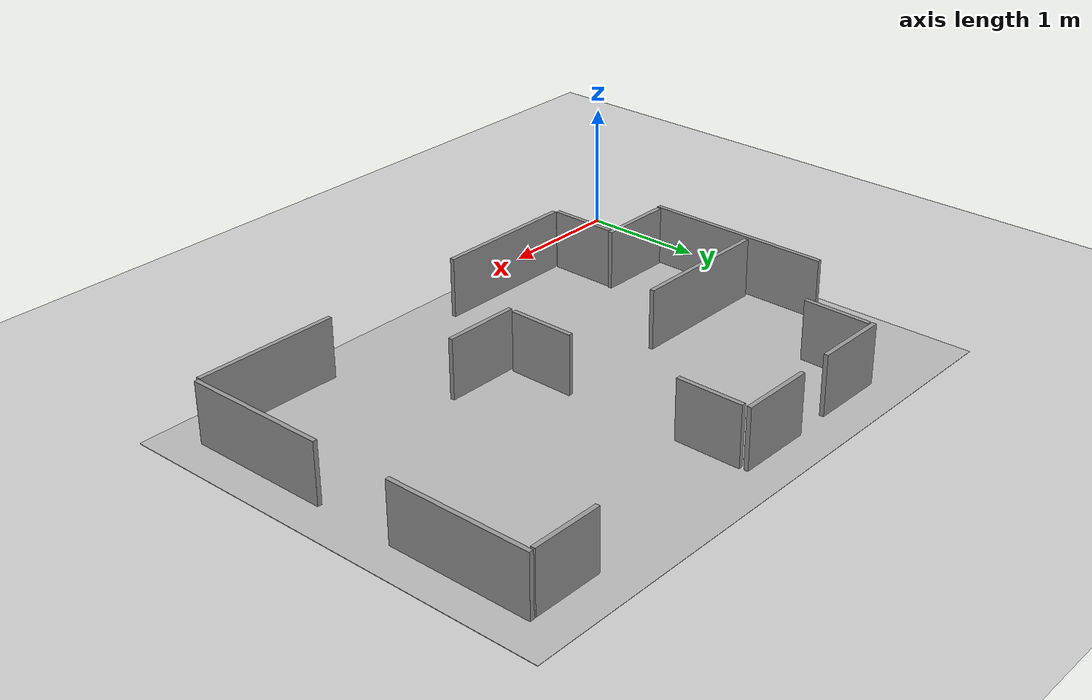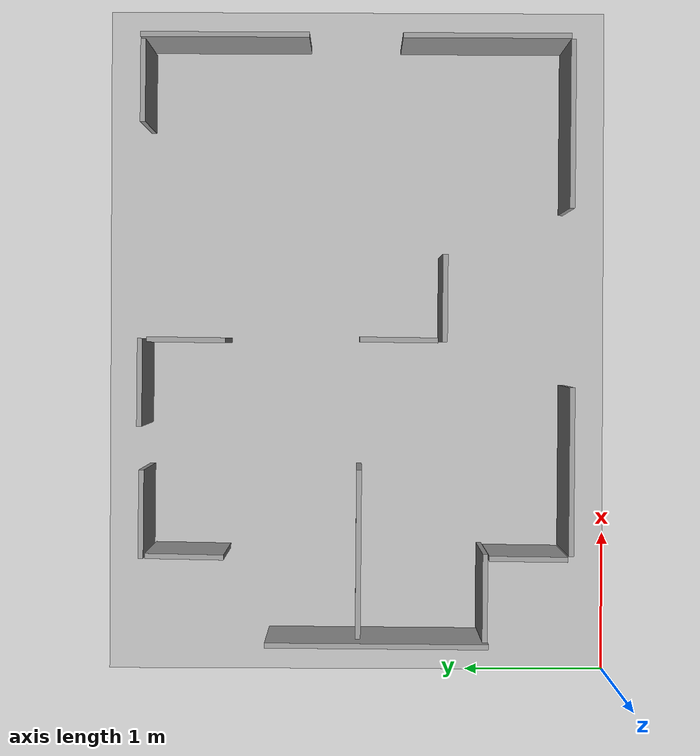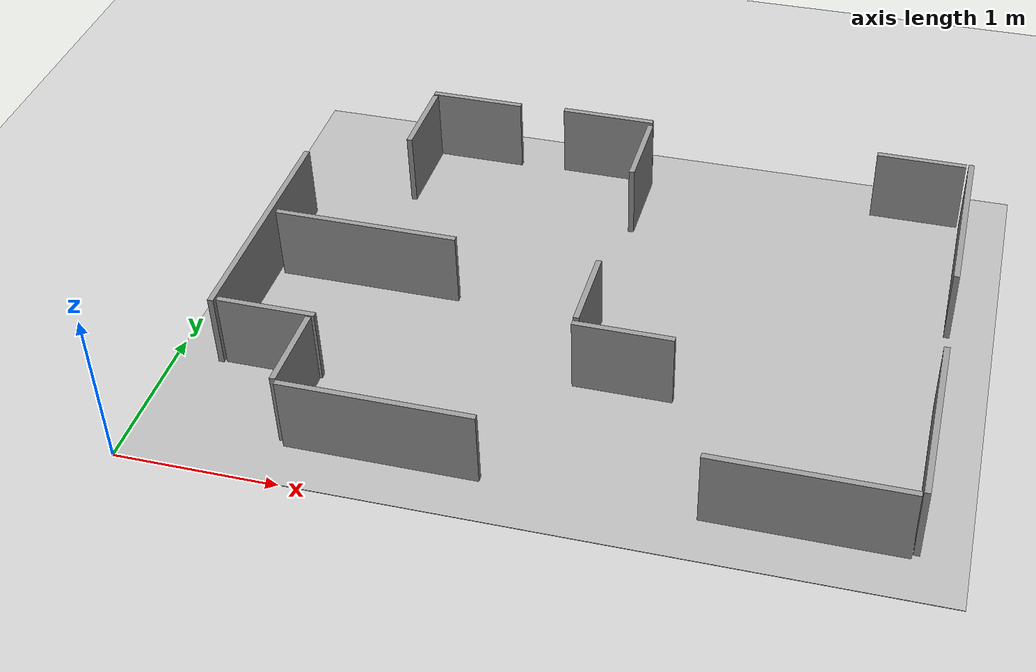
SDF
<sdf version="1.7">
 <world name="default">
  <scene><ambient>0.4 0.4 0.4 1</ambient><background>0.7 0.7 0.7 1</background><shadows>1</shadows></scene>
  <light name="sun" type="directional">
   <pose>0 0 10 0 -0 0</pose>
   <diffuse>0.8 0.8 0.8 1</diffuse>
   <specular>0.2 0.2 0.2 1</specular>
   <attenuation>
    <range>1000</range>
    <constant>0.9</constant>
    <linear>0.01</linear>
    <quadratic>0.001</quadratic>
   </attenuation>
   <direction>-0.5 0.1 -0.9</direction>
   <spot><inner_angle>0</inner_angle><outer_angle>0</outer_angle><falloff>0</falloff></spot>
  </light>
  <model name="ground_plane">
   <static>1</static>
   <link name="link">
    <collision name="collision">
     <geometry><plane><normal>0 0 1</normal><size>100 100</size></plane></geometry>
     <surface>
      <contact><collide_bitmask>65535</collide_bitmask></contact>
      <friction><ode><mu>100</mu><mu2>50</mu2></ode></friction>
     </surface>
    </collision>
    <visual name="visual">
     <cast_shadows>0</cast_shadows>
     <geometry><plane><normal>0 0 1</normal><size>100 100</size></plane></geometry>
     <material>
      <script><uri>file://media/materials/scripts/gazebo.material</uri><name>Gazebo/Grey</name></script>
     </material>
    </visual>
   </link>
  </model>
  <model name="courseabc">
   <static>1</static>
   <link name="course_link">
    <visual name="course_visual">
     <cast_shadows>0</cast_shadows>
     <geometry><plane><normal>0 0 1</normal><size>4.8 3.6</size></plane></geometry>
     <material>
      <script>
       <uri>model://courseabc/materials/scripts</uri>
       <uri>model://courseabc/materials/textures</uri>
       <name>courseabc</name>
      </script>
     </material>
    </visual>
   </link>
   <pose>2.4 1.8 0.001 0 -0 0</pose>
  </model>
  <physics type="ode">
   <real_time_update_rate>1000</real_time_update_rate>
   <max_step_size>0.001</max_step_size>
   <real_time_factor>1</real_time_factor>
   <ode>
    <solver>
     <type>quick</type>
     <iters>150</iters>
     <precon_iters>0</precon_iters>
     <sor>1.4</sor>
     <use_dynamic_moi_rescaling>1</use_dynamic_moi_rescaling>
    </solver>
    <constraints>
     <cfm>1e-05</cfm>
     <erp>0.2</erp>
     <contact_max_correcting_vel>2000</contact_max_correcting_vel>
     <contact_surface_layer>0.01</contact_surface_layer>
    </constraints>
   </ode>
  </physics>
  <gravity>0 0 -9.8</gravity>
  <magnetic_field>6e-06 2.3e-05 -4.2e-05</magnetic_field>
  <atmosphere type="adiabatic"/>
  <spherical_coordinates>
   <surface_model>EARTH_WGS84</surface_model>
   <latitude_deg>0</latitude_deg>
   <longitude_deg>0</longitude_deg>
   <elevation>0</elevation>
   <heading_deg>0</heading_deg>
  </spherical_coordinates>
  <model name="unit_box">
   <pose>0.287102 1.65666 0.243991 1.4e-05 -0 -0.004626</pose>
   <static>true</static>
   <link name="link">
    <inertial>
     <mass>1</mass>
     <inertia>
      <ixx>0.166667</ixx>
      <ixy>0</ixy>
      <ixz>0</ixz>
      <iyy>0.166667</iyy>
      <iyz>0</iyz>
      <izz>0.166667</izz>
     </inertia>
    </inertial>
    <collision name="collision">
     <geometry><box><size>0.0360529 1.55015 0.488003</size></box></geometry>
    </collision>
    <visual name="visual">
     <geometry><box><size>0.0360529 1.55015 0.488003</size></box></geometry>
     <material>
      <script><name>Gazebo/Grey</name><uri>file://media/materials/scripts/gazebo.material</uri></script>
     </material>
    </visual>
   </link>
  </model>
  <model name="unit_box_clone">
   <pose>4.51527 2.71889 0.243997 -7e-06 -0 -6.5e-05</pose>
   <link name="link">
    <inertial>
     <mass>1</mass>
     <inertia>
      <ixx>0.166667</ixx>
      <ixy>0</ixy>
      <ixz>0</ixz>
      <iyy>0.166667</iyy>
      <iyz>0</iyz>
      <izz>0.166667</izz>
     </inertia>
    </inertial>
    <collision name="collision"><geometry><box><size>0.036053 1.16767 0.488003</size></box></geometry></collision>
    <visual name="visual">
     <geometry><box><size>0.036053 1.16767 0.488003</size></box></geometry>
     <material>
      <script><name>Gazebo/Grey</name><uri>file://media/materials/scripts/gazebo.material</uri></script>
     </material>
    </visual>
   </link>
  </model>
  <model name="unit_box_clone_clone">
   <pose>4.51401 0.902902 0.243997 -7e-06 -0 -6.3e-05</pose>
   <link name="link">
    <inertial>
     <mass>1</mass>
     <inertia>
      <ixx>0.166667</ixx>
      <ixy>0</ixy>
      <ixz>0</ixz>
      <iyy>0.166667</iyy>
      <iyz>0</iyz>
      <izz>0.166667</izz>
     </inertia>
    </inertial>
    <collision name="collision"><geometry><box><size>0.036053 1.16767 0.488003</size></box></geometry></collision>
    <visual name="visual">
     <geometry><box><size>0.036053 1.16767 0.488003</size></box></geometry>
     <material>
      <script><name>Gazebo/Grey</name><uri>file://media/materials/scripts/gazebo.material</uri></script>
     </material>
    </visual>
   </link>
  </model>
  <model name="unit_box_clone_clone_clone">
   <pose>3.90569 0.310238 0.243997 7e-06 -0 1.56622</pose>
   <link name="link">
    <inertial>
     <mass>1</mass>
     <inertia>
      <ixx>0.166667</ixx>
      <ixy>0</ixy>
      <ixz>0</ixz>
      <iyy>0.166667</iyy>
      <iyz>0</iyz>
      <izz>0.166667</izz>
     </inertia>
    </inertial>
    <collision name="collision"><geometry><box><size>0.036053 1.16767 0.488003</size></box></geometry></collision>
    <visual name="visual">
     <geometry><box><size>0.036053 1.16767 0.488003</size></box></geometry>
     <material>
      <script><name>Gazebo/Grey</name><uri>file://media/materials/scripts/gazebo.material</uri></script>
     </material>
    </visual>
   </link>
  </model>
  <model name="unit_box_clone_clone_clone_clone">
   <pose>1.49717 0.310619 0.243997 -7e-06 0 1.56622</pose>
   <link name="link">
    <inertial>
     <mass>1</mass>
     <inertia>
      <ixx>0.166667</ixx>
      <ixy>0</ixy>
      <ixz>0</ixz>
      <iyy>0.166667</iyy>
      <iyz>0</iyz>
      <izz>0.166667</izz>
     </inertia>
    </inertial>
    <collision name="collision"><geometry><box><size>0.036053 1.16767 0.488003</size></box></geometry></collision>
    <visual name="visual">
     <geometry><box><size>0.036053 1.16767 0.488003</size></box></geometry>
     <material>
      <script><name>Gazebo/Grey</name><uri>file://media/materials/scripts/gazebo.material</uri></script>
     </material>
    </visual>
   </link>
  </model>
  <model name="unit_box_clone_clone_clone_clone_clone">
   <pose>0.922353 1.78362 0.243997 8e-06 -0 1.56614</pose>
   <link name="link">
    <inertial>
     <mass>1</mass>
     <inertia>
      <ixx>0.166667</ixx>
      <ixy>0</ixy>
      <ixz>0</ixz>
      <iyy>0.166667</iyy>
      <iyz>0</iyz>
      <izz>0.166667</izz>
     </inertia>
    </inertial>
    <collision name="collision"><geometry><box><size>0.036053 1.16767 0.488003</size></box></geometry></collision>
    <visual name="visual">
     <geometry><box><size>0.036053 1.16767 0.488003</size></box></geometry>
     <material>
      <script><name>Gazebo/Grey</name><uri>file://media/materials/scripts/gazebo.material</uri></script>
     </material>
    </visual>
   </link>
  </model>
  <model name="unit_box_clone_clone_clone_clone_clone_0">
   <pose>0.621538 0.907003 0.244002 0 -0 1.56581</pose>
   <link name="link">
    <inertial>
     <mass>1</mass>
     <inertia>
      <ixx>0.166667</ixx>
      <ixy>0</ixy>
      <ixz>0</ixz>
      <iyy>0.166667</iyy>
      <iyz>0</iyz>
      <izz>0.166667</izz>
     </inertia>
    </inertial>
    <collision name="collision">
     <geometry><box><size>0.036053 0.610785 0.488003</size></box></geometry>
    </collision>
    <visual name="visual">
     <geometry><box><size>0.036053 0.610785 0.488003</size></box></geometry>
     <material>
      <script><name>Gazebo/Grey</name><uri>file://media/materials/scripts/gazebo.material</uri></script>
     </material>
    </visual>
   </link>
  </model>
  <model name="unit_box_clone_clone_clone_clone_clone_0_clone">
   <pose>0.89364 0.606352 0.244002 0 -3e-06 3.13158</pose>
   <link name="link">
    <inertial>
     <mass>1</mass>
     <inertia>
      <ixx>0.166667</ixx>
      <ixy>0</ixy>
      <ixz>0</ixz>
      <iyy>0.166667</iyy>
      <iyz>0</iyz>
      <izz>0.166667</izz>
     </inertia>
    </inertial>
    <collision name="collision">
     <geometry><box><size>0.036053 0.544096 0.488003</size></box></geometry>
    </collision>
    <visual name="visual">
     <geometry><box><size>0.036053 0.544096 0.488003</size></box></geometry>
     <material>
      <script><name>Gazebo/Grey</name><uri>file://media/materials/scripts/gazebo.material</uri></script>
     </material>
    </visual>
   </link>
  </model>
  <model name="unit_box_clone_clone_clone_clone_clone_0_clone_clone">
   <pose>0.901984 2.98726 0.244002 -0 7e-06 3.12491</pose>
   <link name="link">
    <inertial>
     <mass>1</mass>
     <inertia>
      <ixx>0.166667</ixx>
      <ixy>0</ixy>
      <ixz>0</ixz>
      <iyy>0.166667</iyy>
      <iyz>0</iyz>
      <izz>0.166667</izz>
     </inertia>
    </inertial>
    <collision name="collision">
     <geometry><box><size>0.036053 0.544096 0.488003</size></box></geometry>
    </collision>
    <visual name="visual">
     <geometry><box><size>0.036053 0.544096 0.488003</size></box></geometry>
     <material>
      <script><name>Gazebo/Grey</name><uri>file://media/materials/scripts/gazebo.material</uri></script>
     </material>
    </visual>
   </link>
  </model>
  <model name="unit_box_clone_clone_clone_clone_clone_0_clone_0">
   <pose>1.19504 3.28745 0.244002 0 1e-06 1.56581</pose>
   <link name="link">
    <inertial>
     <mass>1</mass>
     <inertia>
      <ixx>0.166667</ixx>
      <ixy>0</ixy>
      <ixz>0</ixz>
      <iyy>0.166667</iyy>
      <iyz>0</iyz>
      <izz>0.166667</izz>
     </inertia>
    </inertial>
    <collision name="collision">
     <geometry><box><size>0.036053 0.610785 0.488003</size></box></geometry>
    </collision>
    <visual name="visual">
     <geometry><box><size>0.036053 0.610785 0.488003</size></box></geometry>
     <material>
      <script><name>Gazebo/Grey</name><uri>file://media/materials/scripts/gazebo.material</uri></script>
     </material>
    </visual>
   </link>
  </model>
  <model name="unit_box_clone_clone_clone_clone_clone_0_clone_0_clone">
   <pose>2.10609 3.30109 0.244001 0 -0 1.56581</pose>
   <link name="link">
    <inertial>
     <mass>1</mass>
     <inertia>
      <ixx>0.166667</ixx>
      <ixy>0</ixy>
      <ixz>0</ixz>
      <iyy>0.166667</iyy>
      <iyz>0</iyz>
      <izz>0.166667</izz>
     </inertia>
    </inertial>
    <collision name="collision">
     <geometry><box><size>0.036053 0.610785 0.488003</size></box></geometry>
    </collision>
    <visual name="visual">
     <geometry><box><size>0.036053 0.610785 0.488003</size></box></geometry>
     <material>
      <script><name>Gazebo/Grey</name><uri>file://media/materials/scripts/gazebo.material</uri></script>
     </material>
    </visual>
   </link>
  </model>
  <model name="unit_box_clone_clone_clone_clone_clone_0_clone_clone_clone">
   <pose>2.40224 2.98208 0.244002 0 1.1e-05 3.13158</pose>
   <link name="link">
    <inertial>
     <mass>1</mass>
     <inertia>
      <ixx>0.166667</ixx>
      <ixy>0</ixy>
      <ixz>0</ixz>
      <iyy>0.166667</iyy>
      <iyz>0</iyz>
      <izz>0.166667</izz>
     </inertia>
    </inertial>
    <collision name="collision">
     <geometry><box><size>0.036053 0.544096 0.488003</size></box></geometry>
    </collision>
    <visual name="visual">
     <geometry><box><size>0.036053 0.544096 0.488003</size></box></geometry>
     <material>
      <script><name>Gazebo/Grey</name><uri>file://media/materials/scripts/gazebo.material</uri></script>
     </material>
    </visual>
   </link>
  </model>
  <model name="unit_box_clone_clone_clone_clone_clone_0_clone_clone_clone_0">
   <pose>2.40686 1.50826 0.244002 0 1.1e-05 3.13158</pose>
   <link name="link">
    <inertial>
     <mass>1</mass>
     <inertia>
      <ixx>0.166667</ixx>
      <ixy>0</ixy>
      <ixz>0</ixz>
      <iyy>0.166667</iyy>
      <iyz>0</iyz>
      <izz>0.166667</izz>
     </inertia>
    </inertial>
    <collision name="collision">
     <geometry><box><size>0.036053 0.544096 0.488003</size></box></geometry>
    </collision>
    <visual name="visual">
     <geometry><box><size>0.036053 0.544096 0.488003</size></box></geometry>
     <material>
      <script><name>Gazebo/Grey</name><uri>file://media/materials/scripts/gazebo.material</uri></script>
     </material>
    </visual>
   </link>
  </model>
  <model name="unit_box_clone_clone_clone_clone_clone_0_clone_0_clone_clone">
   <pose>2.69659 1.19002 0.244001 0 -0 1.56581</pose>
   <link name="link">
    <inertial>
     <mass>1</mass>
     <inertia>
      <ixx>0.166667</ixx>
      <ixy>0</ixy>
      <ixz>0</ixz>
      <iyy>0.166667</iyy>
      <iyz>0</iyz>
      <izz>0.166667</izz>
     </inertia>
    </inertial>
    <collision name="collision">
     <geometry><box><size>0.036053 0.610785 0.488003</size></box></geometry>
    </collision>
    <visual name="visual">
     <geometry><box><size>0.036053 0.610785 0.488003</size></box></geometry>
     <material>
      <script><name>Gazebo/Grey</name><uri>file://media/materials/scripts/gazebo.material</uri></script>
     </material>
    </visual>
   </link>
  </model>
  <model name="unit_box_clone_clone_clone_clone_clone_0_clone_0_clone_clone_0">
   <pose>4.19664 3.28468 0.244002 0 -3e-06 1.56581</pose>
   <link name="link">
    <inertial>
     <mass>1</mass>
     <inertia>
      <ixx>0.166667</ixx>
      <ixy>0</ixy>
      <ixz>0</ixz>
      <iyy>0.166667</iyy>
      <iyz>0</iyz>
      <izz>0.166667</izz>
     </inertia>
    </inertial>
    <collision name="collision"><geometry><box><size>0.036053 0.57178 0.488003</size></box></geometry></collision>
    <visual name="visual">
     <geometry><box><size>0.036053 0.57178 0.488003</size></box></geometry>
     <material>
      <script><name>Gazebo/Grey</name><uri>file://media/materials/scripts/gazebo.material</uri></script>
     </material>
    </visual>
   </link>
  </model>
 </world>
</sdf>
